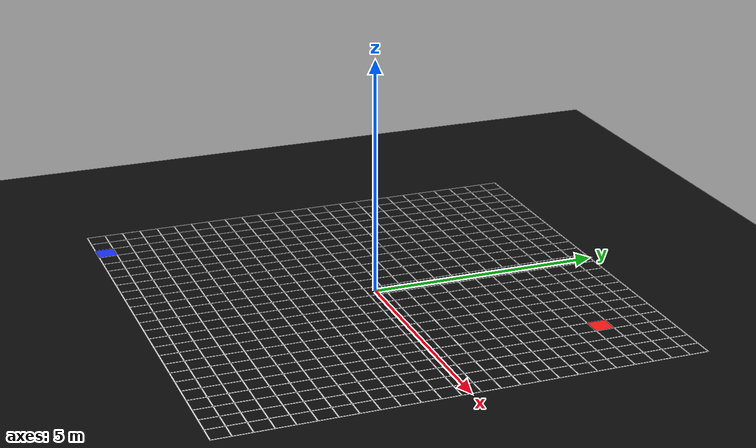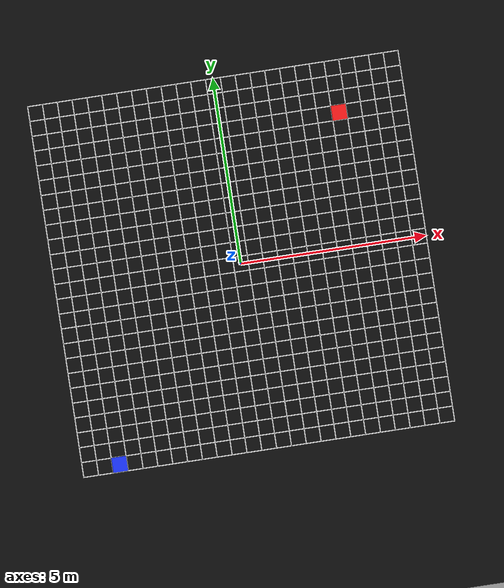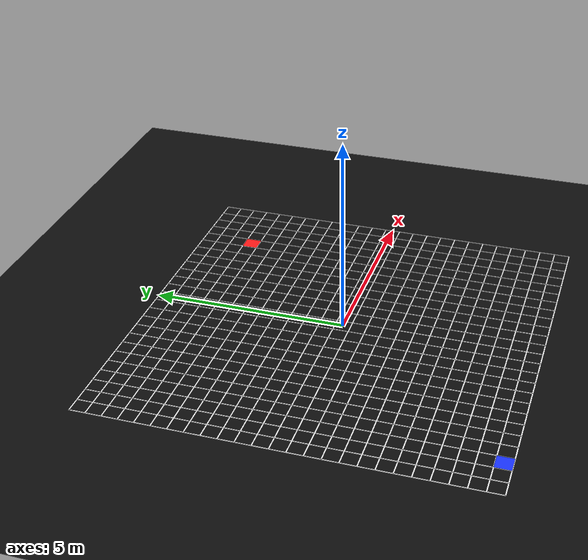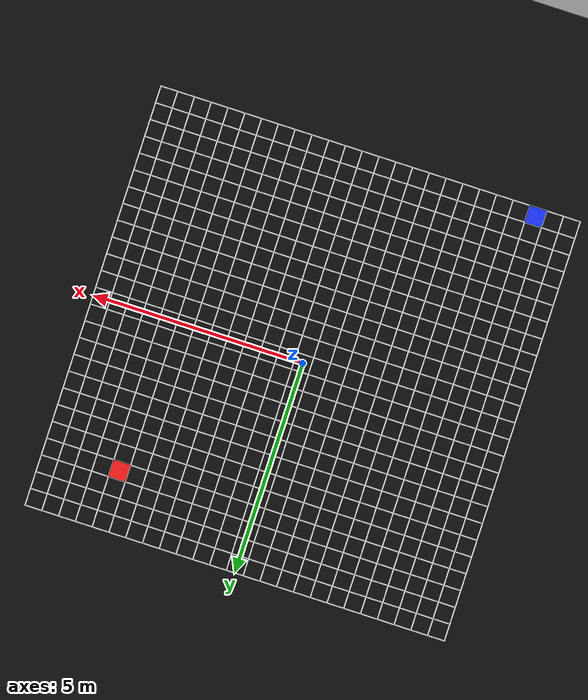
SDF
<sdf version="1.9">
 <world name="slrc_arena_from_image">
  <model name="floor">
   <static>true</static>
   <link name="link">
    <collision name="col">
     <pose>0 0 0.0010 0 0 0</pose>
     <geometry><box><size>50 50 0.0020</size></box></geometry>
    </collision>
    <visual name="vis">
     <pose>0 0 0.0010 0 0 0</pose>
     <geometry><box><size>50 50 0.0020</size></box></geometry>
     <material>
      <ambient>0.05 0.05 0.05 1</ambient>
      <diffuse>0.05 0.05 0.05 1</diffuse>
      <specular>0 0 0 1</specular>
     </material>
    </visual>
   </link>
  </model>
  <model name="grid_lines">
   <static>true</static>
   <link name="link">
    <visual name="v0_vis">
     <pose>-5.0000 0.0000 0.0032 0.0000 0.0000 0.0000</pose>
     <geometry><box><size>0.0300 10.0300 0.0020</size></box></geometry>
     <material>
      <ambient>1.000 1.000 1.000 1.000</ambient>
      <diffuse>1.000 1.000 1.000 1.000</diffuse>
      <emissive>1.000 1.000 1.000 1.000</emissive>
      <specular>0 0 0 1</specular>
     </material>
    </visual>
    <visual name="v1_vis">
     <pose>-4.6000 0.0000 0.0032 0.0000 0.0000 0.0000</pose>
     <geometry><box><size>0.0300 10.0300 0.0020</size></box></geometry>
     <material>
      <ambient>1.000 1.000 1.000 1.000</ambient>
      <diffuse>1.000 1.000 1.000 1.000</diffuse>
      <emissive>1.000 1.000 1.000 1.000</emissive>
      <specular>0 0 0 1</specular>
     </material>
    </visual>
    <visual name="v2_vis">
     <pose>-4.2000 0.0000 0.0032 0.0000 0.0000 0.0000</pose>
     <geometry><box><size>0.0300 10.0300 0.0020</size></box></geometry>
     <material>
      <ambient>1.000 1.000 1.000 1.000</ambient>
      <diffuse>1.000 1.000 1.000 1.000</diffuse>
      <emissive>1.000 1.000 1.000 1.000</emissive>
      <specular>0 0 0 1</specular>
     </material>
    </visual>
    <visual name="v3_vis">
     <pose>-3.8000 0.0000 0.0032 0.0000 0.0000 0.0000</pose>
     <geometry><box><size>0.0300 10.0300 0.0020</size></box></geometry>
     <material>
      <ambient>1.000 1.000 1.000 1.000</ambient>
      <diffuse>1.000 1.000 1.000 1.000</diffuse>
      <emissive>1.000 1.000 1.000 1.000</emissive>
      <specular>0 0 0 1</specular>
     </material>
    </visual>
    <visual name="v4_vis">
     <pose>-3.4000 0.0000 0.0032 0.0000 0.0000 0.0000</pose>
     <geometry><box><size>0.0300 10.0300 0.0020</size></box></geometry>
     <material>
      <ambient>1.000 1.000 1.000 1.000</ambient>
      <diffuse>1.000 1.000 1.000 1.000</diffuse>
      <emissive>1.000 1.000 1.000 1.000</emissive>
      <specular>0 0 0 1</specular>
     </material>
    </visual>
    <visual name="v5_vis">
     <pose>-3.0000 0.0000 0.0032 0.0000 0.0000 0.0000</pose>
     <geometry><box><size>0.0300 10.0300 0.0020</size></box></geometry>
     <material>
      <ambient>1.000 1.000 1.000 1.000</ambient>
      <diffuse>1.000 1.000 1.000 1.000</diffuse>
      <emissive>1.000 1.000 1.000 1.000</emissive>
      <specular>0 0 0 1</specular>
     </material>
    </visual>
    <visual name="v6_vis">
     <pose>-2.6000 0.0000 0.0032 0.0000 0.0000 0.0000</pose>
     <geometry><box><size>0.0300 10.0300 0.0020</size></box></geometry>
     <material>
      <ambient>1.000 1.000 1.000 1.000</ambient>
      <diffuse>1.000 1.000 1.000 1.000</diffuse>
      <emissive>1.000 1.000 1.000 1.000</emissive>
      <specular>0 0 0 1</specular>
     </material>
    </visual>
    <visual name="v7_vis">
     <pose>-2.2000 0.0000 0.0032 0.0000 0.0000 0.0000</pose>
     <geometry><box><size>0.0300 10.0300 0.0020</size></box></geometry>
     <material>
      <ambient>1.000 1.000 1.000 1.000</ambient>
      <diffuse>1.000 1.000 1.000 1.000</diffuse>
      <emissive>1.000 1.000 1.000 1.000</emissive>
      <specular>0 0 0 1</specular>
     </material>
    </visual>
    <visual name="v8_vis">
     <pose>-1.8000 0.0000 0.0032 0.0000 0.0000 0.0000</pose>
     <geometry><box><size>0.0300 10.0300 0.0020</size></box></geometry>
     <material>
      <ambient>1.000 1.000 1.000 1.000</ambient>
      <diffuse>1.000 1.000 1.000 1.000</diffuse>
      <emissive>1.000 1.000 1.000 1.000</emissive>
      <specular>0 0 0 1</specular>
     </material>
    </visual>
    <visual name="v9_vis">
     <pose>-1.4000 0.0000 0.0032 0.0000 0.0000 0.0000</pose>
     <geometry><box><size>0.0300 10.0300 0.0020</size></box></geometry>
     <material>
      <ambient>1.000 1.000 1.000 1.000</ambient>
      <diffuse>1.000 1.000 1.000 1.000</diffuse>
      <emissive>1.000 1.000 1.000 1.000</emissive>
      <specular>0 0 0 1</specular>
     </material>
    </visual>
    <visual name="v10_vis">
     <pose>-1.0000 0.0000 0.0032 0.0000 0.0000 0.0000</pose>
     <geometry><box><size>0.0300 10.0300 0.0020</size></box></geometry>
     <material>
      <ambient>1.000 1.000 1.000 1.000</ambient>
      <diffuse>1.000 1.000 1.000 1.000</diffuse>
      <emissive>1.000 1.000 1.000 1.000</emissive>
      <specular>0 0 0 1</specular>
     </material>
    </visual>
    <visual name="v11_vis">
     <pose>-0.6000 0.0000 0.0032 0.0000 0.0000 0.0000</pose>
     <geometry><box><size>0.0300 10.0300 0.0020</size></box></geometry>
     <material>
      <ambient>1.000 1.000 1.000 1.000</ambient>
      <diffuse>1.000 1.000 1.000 1.000</diffuse>
      <emissive>1.000 1.000 1.000 1.000</emissive>
      <specular>0 0 0 1</specular>
     </material>
    </visual>
    <visual name="v12_vis">
     <pose>-0.2000 0.0000 0.0032 0.0000 0.0000 0.0000</pose>
     <geometry><box><size>0.0300 10.0300 0.0020</size></box></geometry>
     <material>
      <ambient>1.000 1.000 1.000 1.000</ambient>
      <diffuse>1.000 1.000 1.000 1.000</diffuse>
      <emissive>1.000 1.000 1.000 1.000</emissive>
      <specular>0 0 0 1</specular>
     </material>
    </visual>
    <visual name="v13_vis">
     <pose>0.2000 0.0000 0.0032 0.0000 0.0000 0.0000</pose>
     <geometry><box><size>0.0300 10.0300 0.0020</size></box></geometry>
     <material>
      <ambient>1.000 1.000 1.000 1.000</ambient>
      <diffuse>1.000 1.000 1.000 1.000</diffuse>
      <emissive>1.000 1.000 1.000 1.000</emissive>
      <specular>0 0 0 1</specular>
     </material>
    </visual>
    <visual name="v14_vis">
     <pose>0.6000 0.0000 0.0032 0.0000 0.0000 0.0000</pose>
     <geometry><box><size>0.0300 10.0300 0.0020</size></box></geometry>
     <material>
      <ambient>1.000 1.000 1.000 1.000</ambient>
      <diffuse>1.000 1.000 1.000 1.000</diffuse>
      <emissive>1.000 1.000 1.000 1.000</emissive>
      <specular>0 0 0 1</specular>
     </material>
    </visual>
    <visual name="v15_vis">
     <pose>1.0000 0.0000 0.0032 0.0000 0.0000 0.0000</pose>
     <geometry><box><size>0.0300 10.0300 0.0020</size></box></geometry>
     <material>
      <ambient>1.000 1.000 1.000 1.000</ambient>
      <diffuse>1.000 1.000 1.000 1.000</diffuse>
      <emissive>1.000 1.000 1.000 1.000</emissive>
      <specular>0 0 0 1</specular>
     </material>
    </visual>
    <visual name="v16_vis">
     <pose>1.4000 0.0000 0.0032 0.0000 0.0000 0.0000</pose>
     <geometry><box><size>0.0300 10.0300 0.0020</size></box></geometry>
     <material>
      <ambient>1.000 1.000 1.000 1.000</ambient>
      <diffuse>1.000 1.000 1.000 1.000</diffuse>
      <emissive>1.000 1.000 1.000 1.000</emissive>
      <specular>0 0 0 1</specular>
     </material>
    </visual>
    <visual name="v17_vis">
     <pose>1.8000 0.0000 0.0032 0.0000 0.0000 0.0000</pose>
     <geometry><box><size>0.0300 10.0300 0.0020</size></box></geometry>
     <material>
      <ambient>1.000 1.000 1.000 1.000</ambient>
      <diffuse>1.000 1.000 1.000 1.000</diffuse>
      <emissive>1.000 1.000 1.000 1.000</emissive>
      <specular>0 0 0 1</specular>
     </material>
    </visual>
    <visual name="v18_vis">
     <pose>2.2000 0.0000 0.0032 0.0000 0.0000 0.0000</pose>
     <geometry><box><size>0.0300 10.0300 0.0020</size></box></geometry>
     <material>
      <ambient>1.000 1.000 1.000 1.000</ambient>
      <diffuse>1.000 1.000 1.000 1.000</diffuse>
      <emissive>1.000 1.000 1.000 1.000</emissive>
      <specular>0 0 0 1</specular>
     </material>
    </visual>
    <visual name="v19_vis">
     <pose>2.6000 0.0000 0.0032 0.0000 0.0000 0.0000</pose>
     <geometry><box><size>0.0300 10.0300 0.0020</size></box></geometry>
     <material>
      <ambient>1.000 1.000 1.000 1.000</ambient>
      <diffuse>1.000 1.000 1.000 1.000</diffuse>
      <emissive>1.000 1.000 1.000 1.000</emissive>
      <specular>0 0 0 1</specular>
     </material>
    </visual>
    <visual name="v20_vis">
     <pose>3.0000 0.0000 0.0032 0.0000 0.0000 0.0000</pose>
     <geometry><box><size>0.0300 10.0300 0.0020</size></box></geometry>
     <material>
      <ambient>1.000 1.000 1.000 1.000</ambient>
      <diffuse>1.000 1.000 1.000 1.000</diffuse>
      <emissive>1.000 1.000 1.000 1.000</emissive>
      <specular>0 0 0 1</specular>
     </material>
    </visual>
    <visual name="v21_vis">
     <pose>3.4000 0.0000 0.0032 0.0000 0.0000 0.0000</pose>
     <geometry><box><size>0.0300 10.0300 0.0020</size></box></geometry>
     <material>
      <ambient>1.000 1.000 1.000 1.000</ambient>
      <diffuse>1.000 1.000 1.000 1.000</diffuse>
      <emissive>1.000 1.000 1.000 1.000</emissive>
      <specular>0 0 0 1</specular>
     </material>
    </visual>
    <visual name="v22_vis">
     <pose>3.8000 0.0000 0.0032 0.0000 0.0000 0.0000</pose>
     <geometry><box><size>0.0300 10.0300 0.0020</size></box></geometry>
     <material>
      <ambient>1.000 1.000 1.000 1.000</ambient>
      <diffuse>1.000 1.000 1.000 1.000</diffuse>
      <emissive>1.000 1.000 1.000 1.000</emissive>
      <specular>0 0 0 1</specular>
     </material>
    </visual>
    <visual name="v23_vis">
     <pose>4.2000 0.0000 0.0032 0.0000 0.0000 0.0000</pose>
     <geometry><box><size>0.0300 10.0300 0.0020</size></box></geometry>
     <material>
      <ambient>1.000 1.000 1.000 1.000</ambient>
      <diffuse>1.000 1.000 1.000 1.000</diffuse>
      <emissive>1.000 1.000 1.000 1.000</emissive>
      <specular>0 0 0 1</specular>
     </material>
    </visual>
    <visual name="v24_vis">
     <pose>4.6000 0.0000 0.0032 0.0000 0.0000 0.0000</pose>
     <geometry><box><size>0.0300 10.0300 0.0020</size></box></geometry>
     <material>
      <ambient>1.000 1.000 1.000 1.000</ambient>
      <diffuse>1.000 1.000 1.000 1.000</diffuse>
      <emissive>1.000 1.000 1.000 1.000</emissive>
      <specular>0 0 0 1</specular>
     </material>
    </visual>
    <visual name="v25_vis">
     <pose>5.0000 0.0000 0.0032 0.0000 0.0000 0.0000</pose>
     <geometry><box><size>0.0300 10.0300 0.0020</size></box></geometry>
     <material>
      <ambient>1.000 1.000 1.000 1.000</ambient>
      <diffuse>1.000 1.000 1.000 1.000</diffuse>
      <emissive>1.000 1.000 1.000 1.000</emissive>
      <specular>0 0 0 1</specular>
     </material>
    </visual>
    <visual name="h0_vis">
     <pose>0.0000 5.0000 0.0032 0.0000 0.0000 0.0000</pose>
     <geometry><box><size>10.0300 0.0300 0.0020</size></box></geometry>
     <material>
      <ambient>1.000 1.000 1.000 1.000</ambient>
      <diffuse>1.000 1.000 1.000 1.000</diffuse>
      <emissive>1.000 1.000 1.000 1.000</emissive>
      <specular>0 0 0 1</specular>
     </material>
    </visual>
    <visual name="h1_vis">
     <pose>0.0000 4.6000 0.0032 0.0000 0.0000 0.0000</pose>
     <geometry><box><size>10.0300 0.0300 0.0020</size></box></geometry>
     <material>
      <ambient>1.000 1.000 1.000 1.000</ambient>
      <diffuse>1.000 1.000 1.000 1.000</diffuse>
      <emissive>1.000 1.000 1.000 1.000</emissive>
      <specular>0 0 0 1</specular>
     </material>
    </visual>
    <visual name="h2_vis">
     <pose>0.0000 4.2000 0.0032 0.0000 0.0000 0.0000</pose>
     <geometry><box><size>10.0300 0.0300 0.0020</size></box></geometry>
     <material>
      <ambient>1.000 1.000 1.000 1.000</ambient>
      <diffuse>1.000 1.000 1.000 1.000</diffuse>
      <emissive>1.000 1.000 1.000 1.000</emissive>
      <specular>0 0 0 1</specular>
     </material>
    </visual>
    <visual name="h3_vis">
     <pose>0.0000 3.8000 0.0032 0.0000 0.0000 0.0000</pose>
     <geometry><box><size>10.0300 0.0300 0.0020</size></box></geometry>
     <material>
      <ambient>1.000 1.000 1.000 1.000</ambient>
      <diffuse>1.000 1.000 1.000 1.000</diffuse>
      <emissive>1.000 1.000 1.000 1.000</emissive>
      <specular>0 0 0 1</specular>
     </material>
    </visual>
    <visual name="h4_vis">
     <pose>0.0000 3.4000 0.0032 0.0000 0.0000 0.0000</pose>
     <geometry><box><size>10.0300 0.0300 0.0020</size></box></geometry>
     <material>
      <ambient>1.000 1.000 1.000 1.000</ambient>
      <diffuse>1.000 1.000 1.000 1.000</diffuse>
      <emissive>1.000 1.000 1.000 1.000</emissive>
      <specular>0 0 0 1</specular>
     </material>
    </visual>
    <visual name="h5_vis">
     <pose>0.0000 3.0000 0.0032 0.0000 0.0000 0.0000</pose>
     <geometry><box><size>10.0300 0.0300 0.0020</size></box></geometry>
     <material>
      <ambient>1.000 1.000 1.000 1.000</ambient>
      <diffuse>1.000 1.000 1.000 1.000</diffuse>
      <emissive>1.000 1.000 1.000 1.000</emissive>
      <specular>0 0 0 1</specular>
     </material>
    </visual>
    <visual name="h6_vis">
     <pose>0.0000 2.6000 0.0032 0.0000 0.0000 0.0000</pose>
     <geometry><box><size>10.0300 0.0300 0.0020</size></box></geometry>
     <material>
      <ambient>1.000 1.000 1.000 1.000</ambient>
      <diffuse>1.000 1.000 1.000 1.000</diffuse>
      <emissive>1.000 1.000 1.000 1.000</emissive>
      <specular>0 0 0 1</specular>
     </material>
    </visual>
    <visual name="h7_vis">
     <pose>0.0000 2.2000 0.0032 0.0000 0.0000 0.0000</pose>
     <geometry><box><size>10.0300 0.0300 0.0020</size></box></geometry>
     <material>
      <ambient>1.000 1.000 1.000 1.000</ambient>
      <diffuse>1.000 1.000 1.000 1.000</diffuse>
      <emissive>1.000 1.000 1.000 1.000</emissive>
      <specular>0 0 0 1</specular>
     </material>
    </visual>
    <visual name="h8_vis">
     <pose>0.0000 1.8000 0.0032 0.0000 0.0000 0.0000</pose>
     <geometry><box><size>10.0300 0.0300 0.0020</size></box></geometry>
     <material>
      <ambient>1.000 1.000 1.000 1.000</ambient>
      <diffuse>1.000 1.000 1.000 1.000</diffuse>
      <emissive>1.000 1.000 1.000 1.000</emissive>
      <specular>0 0 0 1</specular>
     </material>
    </visual>
    <visual name="h9_vis">
     <pose>0.0000 1.4000 0.0032 0.0000 0.0000 0.0000</pose>
     <geometry><box><size>10.0300 0.0300 0.0020</size></box></geometry>
     <material>
      <ambient>1.000 1.000 1.000 1.000</ambient>
      <diffuse>1.000 1.000 1.000 1.000</diffuse>
      <emissive>1.000 1.000 1.000 1.000</emissive>
      <specular>0 0 0 1</specular>
     </material>
    </visual>
    <visual name="h10_vis">
     <pose>0.0000 1.0000 0.0032 0.0000 0.0000 0.0000</pose>
     <geometry><box><size>10.0300 0.0300 0.0020</size></box></geometry>
     <material>
      <ambient>1.000 1.000 1.000 1.000</ambient>
      <diffuse>1.000 1.000 1.000 1.000</diffuse>
      <emissive>1.000 1.000 1.000 1.000</emissive>
      <specular>0 0 0 1</specular>
     </material>
    </visual>
    <visual name="h11_vis">
     <pose>0.0000 0.6000 0.0032 0.0000 0.0000 0.0000</pose>
     <geometry><box><size>10.0300 0.0300 0.0020</size></box></geometry>
     <material>
      <ambient>1.000 1.000 1.000 1.000</ambient>
      <diffuse>1.000 1.000 1.000 1.000</diffuse>
      <emissive>1.000 1.000 1.000 1.000</emissive>
      <specular>0 0 0 1</specular>
     </material>
    </visual>
    <visual name="h12_vis">
     <pose>0.0000 0.2000 0.0032 0.0000 0.0000 0.0000</pose>
     <geometry><box><size>10.0300 0.0300 0.0020</size></box></geometry>
     <material>
      <ambient>1.000 1.000 1.000 1.000</ambient>
      <diffuse>1.000 1.000 1.000 1.000</diffuse>
      <emissive>1.000 1.000 1.000 1.000</emissive>
      <specular>0 0 0 1</specular>
     </material>
    </visual>
    <visual name="h13_vis">
     <pose>0.0000 -0.2000 0.0032 0.0000 0.0000 0.0000</pose>
     <geometry><box><size>10.0300 0.0300 0.0020</size></box></geometry>
     <material>
      <ambient>1.000 1.000 1.000 1.000</ambient>
      <diffuse>1.000 1.000 1.000 1.000</diffuse>
      <emissive>1.000 1.000 1.000 1.000</emissive>
      <specular>0 0 0 1</specular>
     </material>
    </visual>
    <visual name="h14_vis">
     <pose>0.0000 -0.6000 0.0032 0.0000 0.0000 0.0000</pose>
     <geometry><box><size>10.0300 0.0300 0.0020</size></box></geometry>
     <material>
      <ambient>1.000 1.000 1.000 1.000</ambient>
      <diffuse>1.000 1.000 1.000 1.000</diffuse>
      <emissive>1.000 1.000 1.000 1.000</emissive>
      <specular>0 0 0 1</specular>
     </material>
    </visual>
    <visual name="h15_vis">
     <pose>0.0000 -1.0000 0.0032 0.0000 0.0000 0.0000</pose>
     <geometry><box><size>10.0300 0.0300 0.0020</size></box></geometry>
     <material>
      <ambient>1.000 1.000 1.000 1.000</ambient>
      <diffuse>1.000 1.000 1.000 1.000</diffuse>
      <emissive>1.000 1.000 1.000 1.000</emissive>
      <specular>0 0 0 1</specular>
     </material>
    </visual>
    <visual name="h16_vis">
     <pose>0.0000 -1.4000 0.0032 0.0000 0.0000 0.0000</pose>
     <geometry><box><size>10.0300 0.0300 0.0020</size></box></geometry>
     <material>
      <ambient>1.000 1.000 1.000 1.000</ambient>
      <diffuse>1.000 1.000 1.000 1.000</diffuse>
      <emissive>1.000 1.000 1.000 1.000</emissive>
      <specular>0 0 0 1</specular>
     </material>
    </visual>
    <visual name="h17_vis">
     <pose>0.0000 -1.8000 0.0032 0.0000 0.0000 0.0000</pose>
     <geometry><box><size>10.0300 0.0300 0.0020</size></box></geometry>
     <material>
      <ambient>1.000 1.000 1.000 1.000</ambient>
      <diffuse>1.000 1.000 1.000 1.000</diffuse>
      <emissive>1.000 1.000 1.000 1.000</emissive>
      <specular>0 0 0 1</specular>
     </material>
    </visual>
    <visual name="h18_vis">
     <pose>0.0000 -2.2000 0.0032 0.0000 0.0000 0.0000</pose>
     <geometry><box><size>10.0300 0.0300 0.0020</size></box></geometry>
     <material>
      <ambient>1.000 1.000 1.000 1.000</ambient>
      <diffuse>1.000 1.000 1.000 1.000</diffuse>
      <emissive>1.000 1.000 1.000 1.000</emissive>
      <specular>0 0 0 1</specular>
     </material>
    </visual>
    <visual name="h19_vis">
     <pose>0.0000 -2.6000 0.0032 0.0000 0.0000 0.0000</pose>
     <geometry><box><size>10.0300 0.0300 0.0020</size></box></geometry>
     <material>
      <ambient>1.000 1.000 1.000 1.000</ambient>
      <diffuse>1.000 1.000 1.000 1.000</diffuse>
      <emissive>1.000 1.000 1.000 1.000</emissive>
      <specular>0 0 0 1</specular>
     </material>
    </visual>
    <visual name="h20_vis">
     <pose>0.0000 -3.0000 0.0032 0.0000 0.0000 0.0000</pose>
     <geometry><box><size>10.0300 0.0300 0.0020</size></box></geometry>
     <material>
      <ambient>1.000 1.000 1.000 1.000</ambient>
      <diffuse>1.000 1.000 1.000 1.000</diffuse>
      <emissive>1.000 1.000 1.000 1.000</emissive>
      <specular>0 0 0 1</specular>
     </material>
    </visual>
    <visual name="h21_vis">
     <pose>0.0000 -3.4000 0.0032 0.0000 0.0000 0.0000</pose>
     <geometry><box><size>10.0300 0.0300 0.0020</size></box></geometry>
     <material>
      <ambient>1.000 1.000 1.000 1.000</ambient>
      <diffuse>1.000 1.000 1.000 1.000</diffuse>
      <emissive>1.000 1.000 1.000 1.000</emissive>
      <specular>0 0 0 1</specular>
     </material>
    </visual>
    <visual name="h22_vis">
     <pose>0.0000 -3.8000 0.0032 0.0000 0.0000 0.0000</pose>
     <geometry><box><size>10.0300 0.0300 0.0020</size></box></geometry>
     <material>
      <ambient>1.000 1.000 1.000 1.000</ambient>
      <diffuse>1.000 1.000 1.000 1.000</diffuse>
      <emissive>1.000 1.000 1.000 1.000</emissive>
      <specular>0 0 0 1</specular>
     </material>
    </visual>
    <visual name="h23_vis">
     <pose>0.0000 -4.2000 0.0032 0.0000 0.0000 0.0000</pose>
     <geometry><box><size>10.0300 0.0300 0.0020</size></box></geometry>
     <material>
      <ambient>1.000 1.000 1.000 1.000</ambient>
      <diffuse>1.000 1.000 1.000 1.000</diffuse>
      <emissive>1.000 1.000 1.000 1.000</emissive>
      <specular>0 0 0 1</specular>
     </material>
    </visual>
    <visual name="h24_vis">
     <pose>0.0000 -4.6000 0.0032 0.0000 0.0000 0.0000</pose>
     <geometry><box><size>10.0300 0.0300 0.0020</size></box></geometry>
     <material>
      <ambient>1.000 1.000 1.000 1.000</ambient>
      <diffuse>1.000 1.000 1.000 1.000</diffuse>
      <emissive>1.000 1.000 1.000 1.000</emissive>
      <specular>0 0 0 1</specular>
     </material>
    </visual>
    <visual name="h25_vis">
     <pose>0.0000 -5.0000 0.0032 0.0000 0.0000 0.0000</pose>
     <geometry><box><size>10.0300 0.0300 0.0020</size></box></geometry>
     <material>
      <ambient>1.000 1.000 1.000 1.000</ambient>
      <diffuse>1.000 1.000 1.000 1.000</diffuse>
      <emissive>1.000 1.000 1.000 1.000</emissive>
      <specular>0 0 0 1</specular>
     </material>
    </visual>
   </link>
  </model>
  <model name="start_and_portal">
   <static>true</static>
   <link name="link">
    <visual name="portal_red_vis">
     <pose>3.2000 3.6000 0.0039 0.0000 0.0000 0.0000</pose>
     <geometry><box><size>0.4000 0.4000 0.0030</size></box></geometry>
     <material>
      <ambient>1.000 0.100 0.100 1.000</ambient>
      <diffuse>1.000 0.100 0.100 1.000</diffuse>
      <emissive>1.000 0.100 0.100 1.000</emissive>
      <specular>0 0 0 1</specular>
     </material>
    </visual>
    <visual name="start_blue_vis">
     <pose>-4.0000 -4.8000 0.0039 0.0000 0.0000 0.0000</pose>
     <geometry><box><size>0.4000 0.4000 0.0030</size></box></geometry>
     <material>
      <ambient>0.100 0.200 1.000 1.000</ambient>
      <diffuse>0.100 0.200 1.000 1.000</diffuse>
      <emissive>0.100 0.200 1.000 1.000</emissive>
      <specular>0 0 0 1</specular>
     </material>
    </visual>
   </link>
  </model>
 </world>
</sdf>
